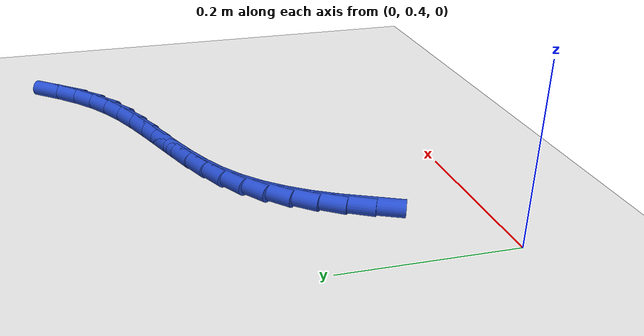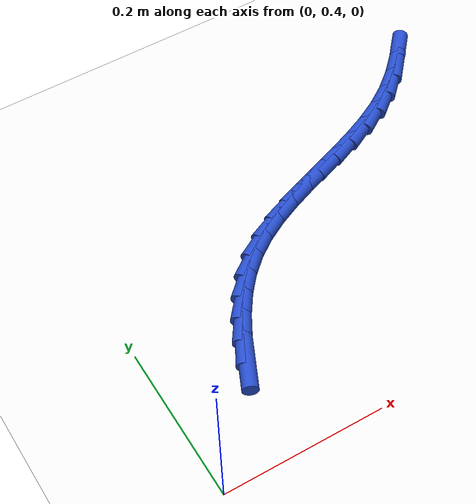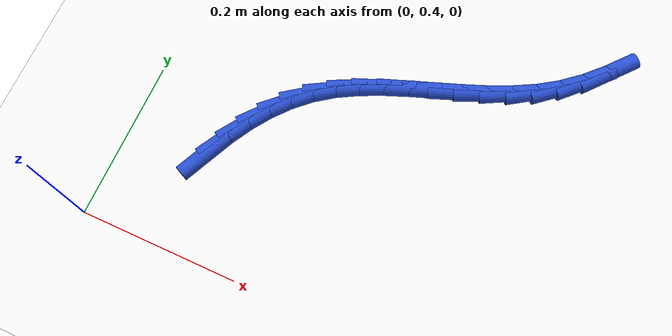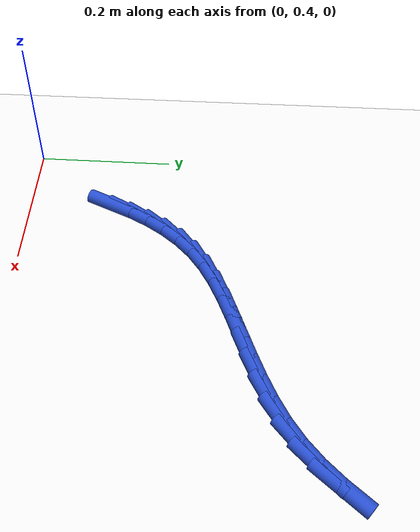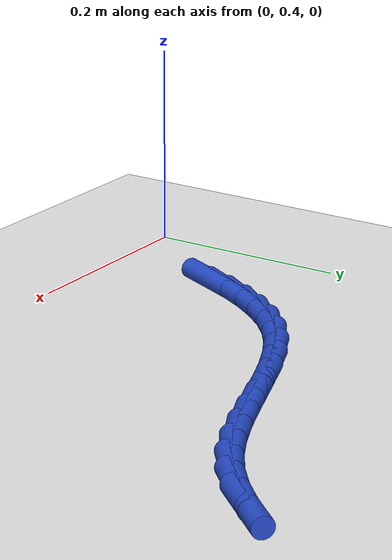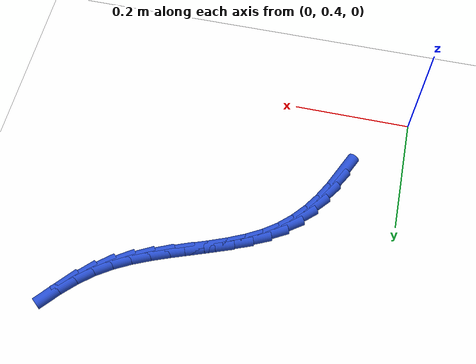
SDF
<sdf version="1.6">
 <world name="default">
  <model name="ground_plane">
   <static>1</static>
   <link name="link">
    <collision name="collision">
     <geometry><plane><normal>0 0 1</normal><size>100 100</size></plane></geometry>
     <surface><friction><ode><mu>100</mu><mu2>50</mu2></ode></friction></surface>
    </collision>
    <visual name="visual">
     <cast_shadows>0</cast_shadows>
     <geometry><plane><normal>0 0 1</normal><size>100 100</size></plane></geometry>
     <material>
      <script><uri>file://media/materials/scripts/gazebo.material</uri><name>Gazebo/WhiteGlow</name></script>
     </material>
    </visual>
   </link>
  </model>
  <model name="line">
   <link name="link_17">
    <pose>0.1022877053098096 0.5253948760031913 0.01 0 1.57 1.1447606539366348</pose>
    <collision name="collision">
     <geometry><cylinder><radius>0.01</radius><length>0.08</length></cylinder></geometry>
    </collision>
    <visual name="visual">
     <material>
      <script><name>Gazebo/Blue</name><uri>file://media/materials/scripts/gazebo.material</uri></script>
     </material>
     <geometry><cylinder><radius>0.01</radius><length>0.08</length></cylinder></geometry>
    </visual>
   </link>
   <link name="link_18">
    <pose>0.11497071194517433 0.5533413831471145 0.01 0 1.57 1.0688360236999108</pose>
    <collision name="collision">
     <geometry><cylinder><radius>0.01</radius><length>0.08</length></cylinder></geometry>
    </collision>
    <visual name="visual">
     <material>
      <script><name>Gazebo/Blue</name><uri>file://media/materials/scripts/gazebo.material</uri></script>
     </material>
     <geometry><cylinder><radius>0.01</radius><length>0.08</length></cylinder></geometry>
    </visual>
   </link>
   <link name="link_19">
    <pose>0.12938233985453332 0.5795992184966544 0.01 0 1.57 0.9788486881386602</pose>
    <collision name="collision">
     <geometry><cylinder><radius>0.01</radius><length>0.08</length></cylinder></geometry>
    </collision>
    <visual name="visual">
     <material>
      <script><name>Gazebo/Blue</name><uri>file://media/materials/scripts/gazebo.material</uri></script>
     </material>
     <geometry><cylinder><radius>0.01</radius><length>0.08</length></cylinder></geometry>
    </visual>
   </link>
   <link name="link_20">
    <pose>0.14572518612713709 0.6039051819041062 0.01 0 1.57 0.8742551975104315</pose>
    <collision name="collision">
     <geometry><cylinder><radius>0.01</radius><length>0.08</length></cylinder></geometry>
    </collision>
    <visual name="visual">
     <material>
      <script><name>Gazebo/Blue</name><uri>file://media/materials/scripts/gazebo.material</uri></script>
     </material>
     <geometry><cylinder><radius>0.01</radius><length>0.08</length></cylinder></geometry>
    </visual>
   </link>
   <link name="link_21">
    <pose>0.1642018478522362 0.6259960732217655 0.01 0 1.57 0.7557115355493477</pose>
    <collision name="collision">
     <geometry><cylinder><radius>0.01</radius><length>0.08</length></cylinder></geometry>
    </collision>
    <visual name="visual">
     <material>
      <script><name>Gazebo/Blue</name><uri>file://media/materials/scripts/gazebo.material</uri></script>
     </material>
     <geometry><cylinder><radius>0.01</radius><length>0.08</length></cylinder></geometry>
    </visual>
   </link>
   <link name="link_22">
    <pose>0.1850149221190814 0.6456086923019283 0.01 0 1.57 0.6275920889381426</pose>
    <collision name="collision">
     <geometry><cylinder><radius>0.01</radius><length>0.08</length></cylinder></geometry>
    </collision>
    <visual name="visual">
     <material>
      <script><name>Gazebo/Blue</name><uri>file://media/materials/scripts/gazebo.material</uri></script>
     </material>
     <geometry><cylinder><radius>0.01</radius><length>0.08</length></cylinder></geometry>
    </visual>
   </link>
   <link name="link_23">
    <pose>0.20833172702468405 0.6625234769087504 0.01 0 1.57 0.5156470011556986</pose>
    <collision name="collision">
     <geometry><cylinder><radius>0.01</radius><length>0.08</length></cylinder></geometry>
    </collision>
    <visual name="visual">
     <material>
      <script><name>Gazebo/Blue</name><uri>file://media/materials/scripts/gazebo.material</uri></script>
     </material>
     <geometry><cylinder><radius>0.01</radius><length>0.08</length></cylinder></geometry>
    </visual>
   </link>
   <link name="link_24">
    <pose>0.2339135190198037 0.6770231377230682 0.01 0 1.57 0.4344191377419434</pose>
    <collision name="collision">
     <geometry><cylinder><radius>0.01</radius><length>0.08</length></cylinder></geometry>
    </collision>
    <visual name="visual">
     <material>
      <script><name>Gazebo/Blue</name><uri>file://media/materials/scripts/gazebo.material</uri></script>
     </material>
     <geometry><cylinder><radius>0.01</radius><length>0.08</length></cylinder></geometry>
    </visual>
   </link>
   <link name="link_25">
    <pose>0.2612614927718114 0.6897120656229611 0.01 0 1.57 0.38181340397320773</pose>
    <collision name="collision">
     <geometry><cylinder><radius>0.01</radius><length>0.08</length></cylinder></geometry>
    </collision>
    <visual name="visual">
     <material>
      <script><name>Gazebo/Blue</name><uri>file://media/materials/scripts/gazebo.material</uri></script>
     </material>
     <geometry><cylinder><radius>0.01</radius><length>0.08</length></cylinder></geometry>
    </visual>
   </link>
   <link name="link_26">
    <pose>0.2898725937474145 0.7011999074825637 0.01 0 1.57 0.3552501573249318</pose>
    <collision name="collision">
     <geometry><cylinder><radius>0.01</radius><length>0.08</length></cylinder></geometry>
    </collision>
    <visual name="visual">
     <material>
      <script><name>Gazebo/Blue</name><uri>file://media/materials/scripts/gazebo.material</uri></script>
     </material>
     <geometry><cylinder><radius>0.01</radius><length>0.08</length></cylinder></geometry>
    </visual>
   </link>
   <link name="link_27">
    <pose>0.3192437674133202 0.7120963101760102 0.01 0 1.57 0.35295950410676824</pose>
    <collision name="collision">
     <geometry><cylinder><radius>0.01</radius><length>0.08</length></cylinder></geometry>
    </collision>
    <visual name="visual">
     <material>
      <script><name>Gazebo/Blue</name><uri>file://media/materials/scripts/gazebo.material</uri></script>
     </material>
     <geometry><cylinder><radius>0.01</radius><length>0.08</length></cylinder></geometry>
    </visual>
   </link>
   <link name="link_28">
    <pose>0.34887195923623615 0.7230109205774358 0.01 0 1.57 0.3743181470414608</pose>
    <collision name="collision">
     <geometry><cylinder><radius>0.01</radius><length>0.08</length></cylinder></geometry>
    </collision>
    <visual name="visual">
     <material>
      <script><name>Gazebo/Blue</name><uri>file://media/materials/scripts/gazebo.material</uri></script>
     </material>
     <geometry><cylinder><radius>0.01</radius><length>0.08</length></cylinder></geometry>
    </visual>
   </link>
   <link name="link_29">
    <pose>0.3782541146828697 0.7345533855609746 0.01 0 1.57 0.4198027358850559</pose>
    <collision name="collision">
     <geometry><cylinder><radius>0.01</radius><length>0.08</length></cylinder></geometry>
    </collision>
    <visual name="visual">
     <material>
      <script><name>Gazebo/Blue</name><uri>file://media/materials/scripts/gazebo.material</uri></script>
     </material>
     <geometry><cylinder><radius>0.01</radius><length>0.08</length></cylinder></geometry>
    </visual>
   </link>
   <link name="link_30">
    <pose>0.406887179219928 0.7473333520007615 0.01 0 1.57 0.4906382961884861</pose>
    <collision name="collision">
     <geometry><cylinder><radius>0.01</radius><length>0.08</length></cylinder></geometry>
    </collision>
    <visual name="visual">
     <material>
      <script><name>Gazebo/Blue</name><uri>file://media/materials/scripts/gazebo.material</uri></script>
     </material>
     <geometry><cylinder><radius>0.01</radius><length>0.08</length></cylinder></geometry>
    </visual>
   </link>
   <link name="link_31">
    <pose>0.4342680983141185 0.7619604667709305 0.01 0 1.57 0.587996325562744</pose>
    <collision name="collision">
     <geometry><cylinder><radius>0.01</radius><length>0.08</length></cylinder></geometry>
    </collision>
    <visual name="visual">
     <material>
      <script><name>Gazebo/Blue</name><uri>file://media/materials/scripts/gazebo.material</uri></script>
     </material>
     <geometry><cylinder><radius>0.01</radius><length>0.08</length></cylinder></geometry>
    </visual>
   </link>
   <link name="link_32">
    <pose>0.4598939819887914 0.779044156841039 0.01 0 1.57 0.7009229676844824</pose>
    <collision name="collision">
     <geometry><cylinder><radius>0.01</radius><length>0.08</length></cylinder></geometry>
    </collision>
    <visual name="visual">
     <material>
      <script><name>Gazebo/Blue</name><uri>file://media/materials/scripts/gazebo.material</uri></script>
     </material>
     <geometry><cylinder><radius>0.01</radius><length>0.08</length></cylinder></geometry>
    </visual>
   </link>
   <link name="link_33">
    <pose>0.48345927634729785 0.7989301399389541 0.01 0 1.57 0.7962964450090528</pose>
    <collision name="collision">
     <geometry><cylinder><radius>0.01</radius><length>0.08</length></cylinder></geometry>
    </collision>
    <visual name="visual">
     <material>
      <script><name>Gazebo/Blue</name><uri>file://media/materials/scripts/gazebo.material</uri></script>
     </material>
     <geometry><cylinder><radius>0.01</radius><length>0.08</length></cylinder></geometry>
    </visual>
   </link>
   <link name="link_34">
    <pose>0.5052383434325876 0.8211891655623366 0.01 0 1.57 0.8682069815176386</pose>
    <collision name="collision">
     <geometry><cylinder><radius>0.01</radius><length>0.08</length></cylinder></geometry>
    </collision>
    <visual name="visual">
     <material>
      <script><name>Gazebo/Blue</name><uri>file://media/materials/scripts/gazebo.material</uri></script>
     </material>
     <geometry><cylinder><radius>0.01</radius><length>0.08</length></cylinder></geometry>
    </visual>
   </link>
  </model>
 </world>
</sdf>
